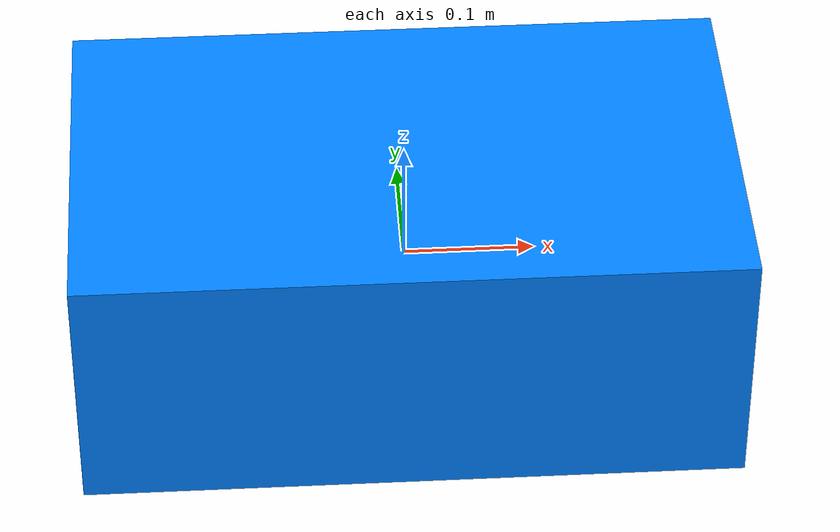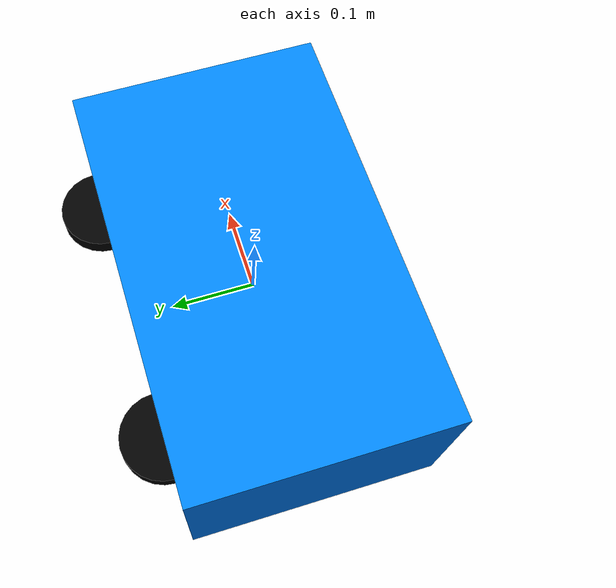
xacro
<?xml version="1.0"?>
<robot name="diff_drive_robot" xmlns:xacro="http://ros.org/wiki/xacro">

  <!-- Base Link -->
  <link name="base_link">
    <visual>
      <geometry>
        <box size="0.5 0.3 0.2"/>  <!-- Length, Width, Height -->
      </geometry>
      <material>
        <color rgba="0.0 0.5 1.0 1.0"/>  <!-- Blue color -->
      </material>
    </visual>
  </link>

  <!-- Left Wheel -->
  <link name="left_wheel">
    <visual>
      <geometry>
        <cylinder radius="0.05" length="0.02"/>
      </geometry>
      <material>
        <color rgba="0.0 0.0 0.0 1.0"/>  <!-- Black color -->
      </material>
    </visual>
  </link>

  <!-- Right Wheel -->
  <link name="right_wheel">
    <visual>
      <geometry>
        <cylinder radius="0.05" length="0.02"/>
      </geometry>
      <material>
        <color rgba="0.0 0.0 0.0 1.0"/>  <!-- Black color -->
      </material>
    </visual>
  </link>

  <!-- Joints -->
  <joint name="left_wheel_joint" type="continuous">
    <parent link="base_link"/>
    <child link="left_wheel"/>
    <origin xyz="-0.15 0.15 0"/>
    <axis xyz="0 1 0"/>
  </joint>

  <joint name="right_wheel_joint" type="continuous">
    <parent link="base_link"/>
    <child link="right_wheel"/>
    <origin xyz="0.15 0.15 0"/>
    <axis xyz="0 1 0"/>
  </joint>

</robot>
